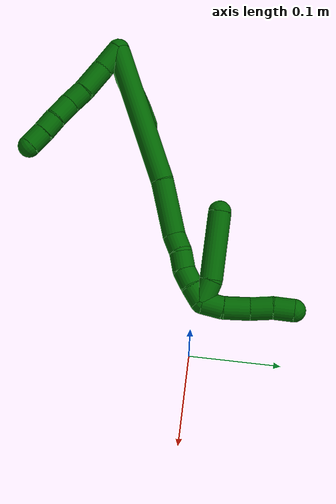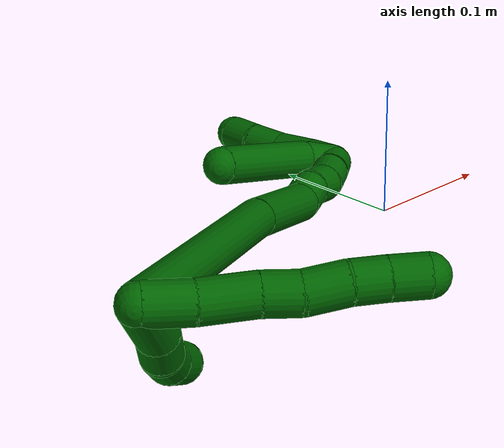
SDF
<sdf version="1.7">
 <world name="default">
  <model name="6">
   <static>0</static>
   <link name="6">
    <collision name="collision-cylinder-e_1_2_8">
     <pose>0.00754 -0.011135 -0.003984 1.91443 0.567581 0.785268</pose>
     <geometry><cylinder><radius>0.0125</radius><length>0.02805</length></cylinder></geometry>
     <surface>
      <friction><ode><mu>1.16</mu><mu2>1.16</mu2><slip1>0</slip1><slip2>0</slip2></ode></friction>
      <contact><ode><kp>1e+06</kp><kd>1</kd><max_vel>0</max_vel><min_depth>0.001</min_depth></ode></contact>
     </surface>
    </collision>
    <visual name="visual-cylinder-e_1_2_8">
     <pose>0.00754 -0.011135 -0.003984 1.91443 0.567581 0.785268</pose>
     <geometry><cylinder><radius>0.0125</radius><length>0.02805</length></cylinder></geometry>
     <material><ambient>0 0.392157 0.003922 1</ambient></material>
    </visual>
    <collision name="collision-cylinder-e_2_8_9">
     <pose>0.025208 -0.034521 -0.012737 1.94199 0.656431 0.924044</pose>
     <geometry><cylinder><radius>0.0125</radius><length>0.033193</length></cylinder></geometry>
     <surface>
      <friction><ode><mu>1.16</mu><mu2>1.16</mu2><slip1>0</slip1><slip2>0</slip2></ode></friction>
      <contact><ode><kp>1e+06</kp><kd>1</kd><max_vel>0</max_vel><min_depth>0.001</min_depth></ode></contact>
     </surface>
    </collision>
    <visual name="visual-cylinder-e_2_8_9">
     <pose>0.025208 -0.034521 -0.012737 1.94199 0.656431 0.924044</pose>
     <geometry><cylinder><radius>0.0125</radius><length>0.033193</length></cylinder></geometry>
     <material><ambient>0 0.392157 0.003922 1</ambient></material>
    </visual>
    <collision name="collision-cylinder-e_3_9_10">
     <pose>0.041522 -0.055418 -0.019283 1.77343 0.611303 0.738427</pose>
     <geometry><cylinder><radius>0.0125</radius><length>0.021554</length></cylinder></geometry>
     <surface>
      <friction><ode><mu>1.16</mu><mu2>1.16</mu2><slip1>0</slip1><slip2>0</slip2></ode></friction>
      <contact><ode><kp>1e+06</kp><kd>1</kd><max_vel>0</max_vel><min_depth>0.001</min_depth></ode></contact>
     </surface>
    </collision>
    <visual name="visual-cylinder-e_3_9_10">
     <pose>0.041522 -0.055418 -0.019283 1.77343 0.611303 0.738427</pose>
     <geometry><cylinder><radius>0.0125</radius><length>0.021554</length></cylinder></geometry>
     <material><ambient>0 0.392157 0.003922 1</ambient></material>
    </visual>
    <collision name="collision-cylinder-e_4_10_11">
     <pose>0.056514 -0.072476 -0.024095 1.91716 0.777587 1.05618</pose>
     <geometry><cylinder><radius>0.0125</radius><length>0.025105</length></cylinder></geometry>
     <surface>
      <friction><ode><mu>1.16</mu><mu2>1.16</mu2><slip1>0</slip1><slip2>0</slip2></ode></friction>
      <contact><ode><kp>1e+06</kp><kd>1</kd><max_vel>0</max_vel><min_depth>0.001</min_depth></ode></contact>
     </surface>
    </collision>
    <visual name="visual-cylinder-e_4_10_11">
     <pose>0.056514 -0.072476 -0.024095 1.91716 0.777587 1.05618</pose>
     <geometry><cylinder><radius>0.0125</radius><length>0.025105</length></cylinder></geometry>
     <material><ambient>0 0.392157 0.003922 1</ambient></material>
    </visual>
    <collision name="collision-cylinder-e_5_11_12">
     <pose>0.071391 -0.088464 -0.029972 1.92951 0.643836 0.897053</pose>
     <geometry><cylinder><radius>0.0125</radius><length>0.020228</length></cylinder></geometry>
     <surface>
      <friction><ode><mu>1.16</mu><mu2>1.16</mu2><slip1>0</slip1><slip2>0</slip2></ode></friction>
      <contact><ode><kp>1e+06</kp><kd>1</kd><max_vel>0</max_vel><min_depth>0.001</min_depth></ode></contact>
     </surface>
    </collision>
    <visual name="visual-cylinder-e_5_11_12">
     <pose>0.071391 -0.088464 -0.029972 1.92951 0.643836 0.897053</pose>
     <geometry><cylinder><radius>0.0125</radius><length>0.020228</length></cylinder></geometry>
     <material><ambient>0 0.392157 0.003922 1</ambient></material>
    </visual>
    <collision name="collision-cylinder-e_6_12_6">
     <pose>0.084051 -0.104451 -0.035135 1.84026 0.64669 0.829352</pose>
     <geometry><cylinder><radius>0.0125</radius><length>0.02187</length></cylinder></geometry>
     <surface>
      <friction><ode><mu>1.16</mu><mu2>1.16</mu2><slip1>0</slip1><slip2>0</slip2></ode></friction>
      <contact><ode><kp>1e+06</kp><kd>1</kd><max_vel>0</max_vel><min_depth>0.001</min_depth></ode></contact>
     </surface>
    </collision>
    <visual name="visual-cylinder-e_6_12_6">
     <pose>0.084051 -0.104451 -0.035135 1.84026 0.64669 0.829352</pose>
     <geometry><cylinder><radius>0.0125</radius><length>0.02187</length></cylinder></geometry>
     <material><ambient>0 0.392157 0.003922 1</ambient></material>
    </visual>
    <collision name="collision-cylinder-e_1_2_13">
     <pose>-0.008842 -0.009528 -0.01312 2.51349 -0.499236 -1.33093</pose>
     <geometry><cylinder><radius>0.0125</radius><length>0.036938</length></cylinder></geometry>
     <surface>
      <friction><ode><mu>1.16</mu><mu2>1.16</mu2><slip1>0</slip1><slip2>0</slip2></ode></friction>
      <contact><ode><kp>1e+06</kp><kd>1</kd><max_vel>0</max_vel><min_depth>0.001</min_depth></ode></contact>
     </surface>
    </collision>
    <visual name="visual-cylinder-e_1_2_13">
     <pose>-0.008842 -0.009528 -0.01312 2.51349 -0.499236 -1.33093</pose>
     <geometry><cylinder><radius>0.0125</radius><length>0.036938</length></cylinder></geometry>
     <material><ambient>0 0.392157 0.003922 1</ambient></material>
    </visual>
    <collision name="collision-cylinder-e_2_13_14">
     <pose>-0.024388 -0.023856 -0.033337 2.5469 -0.663886 -1.68821</pose>
     <geometry><cylinder><radius>0.0125</radius><length>0.021758</length></cylinder></geometry>
     <surface>
      <friction><ode><mu>1.16</mu><mu2>1.16</mu2><slip1>0</slip1><slip2>0</slip2></ode></friction>
      <contact><ode><kp>1e+06</kp><kd>1</kd><max_vel>0</max_vel><min_depth>0.001</min_depth></ode></contact>
     </surface>
    </collision>
    <visual name="visual-cylinder-e_2_13_14">
     <pose>-0.024388 -0.023856 -0.033337 2.5469 -0.663886 -1.68821</pose>
     <geometry><cylinder><radius>0.0125</radius><length>0.021758</length></cylinder></geometry>
     <material><ambient>0 0.392157 0.003922 1</ambient></material>
    </visual>
    <collision name="collision-cylinder-e_3_14_15">
     <pose>-0.035171 -0.032409 -0.048874 2.72317 -0.415991 -1.56479</pose>
     <geometry><cylinder><radius>0.0125</radius><length>0.020194</length></cylinder></geometry>
     <surface>
      <friction><ode><mu>1.16</mu><mu2>1.16</mu2><slip1>0</slip1><slip2>0</slip2></ode></friction>
      <contact><ode><kp>1e+06</kp><kd>1</kd><max_vel>0</max_vel><min_depth>0.001</min_depth></ode></contact>
     </surface>
    </collision>
    <visual name="visual-cylinder-e_3_14_15">
     <pose>-0.035171 -0.032409 -0.048874 2.72317 -0.415991 -1.56479</pose>
     <geometry><cylinder><radius>0.0125</radius><length>0.020194</length></cylinder></geometry>
     <material><ambient>0 0.392157 0.003922 1</ambient></material>
    </visual>
    <collision name="collision-cylinder-e_4_15_5">
     <pose>-0.040991 -0.039957 -0.067007 2.7685 -0.165583 -0.828442</pose>
     <geometry><cylinder><radius>0.0125</radius><length>0.021111</length></cylinder></geometry>
     <surface>
      <friction><ode><mu>1.16</mu><mu2>1.16</mu2><slip1>0</slip1><slip2>0</slip2></ode></friction>
      <contact><ode><kp>1e+06</kp><kd>1</kd><max_vel>0</max_vel><min_depth>0.001</min_depth></ode></contact>
     </surface>
    </collision>
    <visual name="visual-cylinder-e_4_15_5">
     <pose>-0.040991 -0.039957 -0.067007 2.7685 -0.165583 -0.828442</pose>
     <geometry><cylinder><radius>0.0125</radius><length>0.021111</length></cylinder></geometry>
     <material><ambient>0 0.392157 0.003922 1</ambient></material>
    </visual>
    <collision name="collision-cylinder-e_1_2_16">
     <pose>0.015793 -0.017386 -0.074825 2.91329 0.202763 1.45152</pose>
     <geometry><cylinder><radius>0.0125</radius><length>0.156851</length></cylinder></geometry>
     <surface>
      <friction><ode><mu>1.16</mu><mu2>1.16</mu2><slip1>0</slip1><slip2>0</slip2></ode></friction>
      <contact><ode><kp>1e+06</kp><kd>1</kd><max_vel>0</max_vel><min_depth>0.001</min_depth></ode></contact>
     </surface>
    </collision>
    <visual name="visual-cylinder-e_1_2_16">
     <pose>0.015793 -0.017386 -0.074825 2.91329 0.202763 1.45152</pose>
     <geometry><cylinder><radius>0.0125</radius><length>0.156851</length></cylinder></geometry>
     <material><ambient>0 0.392157 0.003922 1</ambient></material>
    </visual>
    <collision name="collision-cylinder-e_2_16_17">
     <pose>0.037097 -0.04567 -0.178367 2.77887 0.177541 0.903751</pose>
     <geometry><cylinder><radius>0.0125</radius><length>0.06241</length></cylinder></geometry>
     <surface>
      <friction><ode><mu>1.16</mu><mu2>1.16</mu2><slip1>0</slip1><slip2>0</slip2></ode></friction>
      <contact><ode><kp>1e+06</kp><kd>1</kd><max_vel>0</max_vel><min_depth>0.001</min_depth></ode></contact>
     </surface>
    </collision>
    <visual name="visual-cylinder-e_2_16_17">
     <pose>0.037097 -0.04567 -0.178367 2.77887 0.177541 0.903751</pose>
     <geometry><cylinder><radius>0.0125</radius><length>0.06241</length></cylinder></geometry>
     <material><ambient>0 0.392157 0.003922 1</ambient></material>
    </visual>
    <collision name="collision-cylinder-e_3_17_18">
     <pose>0.046258 -0.057248 -0.216458 3.06919 0.370399 2.75964</pose>
     <geometry><cylinder><radius>0.0125</radius><length>0.020166</length></cylinder></geometry>
     <surface>
      <friction><ode><mu>1.16</mu><mu2>1.16</mu2><slip1>0</slip1><slip2>0</slip2></ode></friction>
      <contact><ode><kp>1e+06</kp><kd>1</kd><max_vel>0</max_vel><min_depth>0.001</min_depth></ode></contact>
     </surface>
    </collision>
    <visual name="visual-cylinder-e_3_17_18">
     <pose>0.046258 -0.057248 -0.216458 3.06919 0.370399 2.75964</pose>
     <geometry><cylinder><radius>0.0125</radius><length>0.020166</length></cylinder></geometry>
     <material><ambient>0 0.392157 0.003922 1</ambient></material>
    </visual>
    <collision name="collision-cylinder-e_4_18_19">
     <pose>0.052145 -0.061636 -0.235111 2.76144 0.220265 1.04328</pose>
     <geometry><cylinder><radius>0.0125</radius><length>0.02048</length></cylinder></geometry>
     <surface>
      <friction><ode><mu>1.16</mu><mu2>1.16</mu2><slip1>0</slip1><slip2>0</slip2></ode></friction>
      <contact><ode><kp>1e+06</kp><kd>1</kd><max_vel>0</max_vel><min_depth>0.001</min_depth></ode></contact>
     </surface>
    </collision>
    <visual name="visual-cylinder-e_4_18_19">
     <pose>0.052145 -0.061636 -0.235111 2.76144 0.220265 1.04328</pose>
     <geometry><cylinder><radius>0.0125</radius><length>0.02048</length></cylinder></geometry>
     <material><ambient>0 0.392157 0.003922 1</ambient></material>
    </visual>
    <collision name="collision-cylinder-e_5_19_20">
     <pose>0.056932 -0.065663 -0.254093 3.10874 0.256821 2.88853</pose>
     <geometry><cylinder><radius>0.0125</radius><length>0.020074</length></cylinder></geometry>
     <surface>
      <friction><ode><mu>1.16</mu><mu2>1.16</mu2><slip1>0</slip1><slip2>0</slip2></ode></friction>
      <contact><ode><kp>1e+06</kp><kd>1</kd><max_vel>0</max_vel><min_depth>0.001</min_depth></ode></contact>
     </surface>
    </collision>
    <visual name="visual-cylinder-e_5_19_20">
     <pose>0.056932 -0.065663 -0.254093 3.10874 0.256821 2.88853</pose>
     <geometry><cylinder><radius>0.0125</radius><length>0.020074</length></cylinder></geometry>
     <material><ambient>0 0.392157 0.003922 1</ambient></material>
    </visual>
    <collision name="collision-cylinder-e_6_20_1">
     <pose>0.060631 -0.066307 -0.273734 3.10888 0.115085 2.5882</pose>
     <geometry><cylinder><radius>0.0125</radius><length>0.020019</length></cylinder></geometry>
     <surface>
      <friction><ode><mu>1.16</mu><mu2>1.16</mu2><slip1>0</slip1><slip2>0</slip2></ode></friction>
      <contact><ode><kp>1e+06</kp><kd>1</kd><max_vel>0</max_vel><min_depth>0.001</min_depth></ode></contact>
     </surface>
    </collision>
    <visual name="visual-cylinder-e_6_20_1">
     <pose>0.060631 -0.066307 -0.273734 3.10888 0.115085 2.5882</pose>
     <geometry><cylinder><radius>0.0125</radius><length>0.020019</length></cylinder></geometry>
     <material><ambient>0 0.392157 0.003922 1</ambient></material>
    </visual>
    <collision name="collision-cylinder-e_1_1_21">
     <pose>0.057358 -0.060474 -0.292483 -2.5316 -0.39033 1.12139</pose>
     <geometry><cylinder><radius>0.0125</radius><length>0.023249</length></cylinder></geometry>
     <surface>
      <friction><ode><mu>1.16</mu><mu2>1.16</mu2><slip1>0</slip1><slip2>0</slip2></ode></friction>
      <contact><ode><kp>1e+06</kp><kd>1</kd><max_vel>0</max_vel><min_depth>0.001</min_depth></ode></contact>
     </surface>
    </collision>
    <visual name="visual-cylinder-e_1_1_21">
     <pose>0.057358 -0.060474 -0.292483 -2.5316 -0.39033 1.12139</pose>
     <geometry><cylinder><radius>0.0125</radius><length>0.023249</length></cylinder></geometry>
     <material><ambient>0 0.392157 0.003922 1</ambient></material>
    </visual>
    <collision name="collision-cylinder-e_2_21_22">
     <pose>0.046378 -0.044742 -0.310058 -2.31205 -0.467763 0.991919</pose>
     <geometry><cylinder><radius>0.0125</radius><length>0.029082</length></cylinder></geometry>
     <surface>
      <friction><ode><mu>1.16</mu><mu2>1.16</mu2><slip1>0</slip1><slip2>0</slip2></ode></friction>
      <contact><ode><kp>1e+06</kp><kd>1</kd><max_vel>0</max_vel><min_depth>0.001</min_depth></ode></contact>
     </surface>
    </collision>
    <visual name="visual-cylinder-e_2_21_22">
     <pose>0.046378 -0.044742 -0.310058 -2.31205 -0.467763 0.991919</pose>
     <geometry><cylinder><radius>0.0125</radius><length>0.029082</length></cylinder></geometry>
     <material><ambient>0 0.392157 0.003922 1</ambient></material>
    </visual>
    <collision name="collision-cylinder-e_3_22_23">
     <pose>0.035182 -0.025699 -0.325632 -2.19426 -0.378612 0.71542</pose>
     <geometry><cylinder><radius>0.0125</radius><length>0.025105</length></cylinder></geometry>
     <surface>
      <friction><ode><mu>1.16</mu><mu2>1.16</mu2><slip1>0</slip1><slip2>0</slip2></ode></friction>
      <contact><ode><kp>1e+06</kp><kd>1</kd><max_vel>0</max_vel><min_depth>0.001</min_depth></ode></contact>
     </surface>
    </collision>
    <visual name="visual-cylinder-e_3_22_23">
     <pose>0.035182 -0.025699 -0.325632 -2.19426 -0.378612 0.71542</pose>
     <geometry><cylinder><radius>0.0125</radius><length>0.025105</length></cylinder></geometry>
     <material><ambient>0 0.392157 0.003922 1</ambient></material>
    </visual>
    <collision name="collision-cylinder-e_4_23_4">
     <pose>0.02669 -0.00887 -0.340076 -2.37456 -0.348469 0.822698</pose>
     <geometry><cylinder><radius>0.0125</radius><length>0.022564</length></cylinder></geometry>
     <surface>
      <friction><ode><mu>1.16</mu><mu2>1.16</mu2><slip1>0</slip1><slip2>0</slip2></ode></friction>
      <contact><ode><kp>1e+06</kp><kd>1</kd><max_vel>0</max_vel><min_depth>0.001</min_depth></ode></contact>
     </surface>
    </collision>
    <visual name="visual-cylinder-e_4_23_4">
     <pose>0.02669 -0.00887 -0.340076 -2.37456 -0.348469 0.822698</pose>
     <geometry><cylinder><radius>0.0125</radius><length>0.022564</length></cylinder></geometry>
     <material><ambient>0 0.392157 0.003922 1</ambient></material>
    </visual>
    <collision name="collision-cylinder-e_1_1_24">
     <pose>0.057683 -0.056659 -0.277155 -0.992004 -0.331293 0.180437</pose>
     <geometry><cylinder><radius>0.0125</radius><length>0.025196</length></cylinder></geometry>
     <surface>
      <friction><ode><mu>1.16</mu><mu2>1.16</mu2><slip1>0</slip1><slip2>0</slip2></ode></friction>
      <contact><ode><kp>1e+06</kp><kd>1</kd><max_vel>0</max_vel><min_depth>0.001</min_depth></ode></contact>
     </surface>
    </collision>
    <visual name="visual-cylinder-e_1_1_24">
     <pose>0.057683 -0.056659 -0.277155 -0.992004 -0.331293 0.180437</pose>
     <geometry><cylinder><radius>0.0125</radius><length>0.025196</length></cylinder></geometry>
     <material><ambient>0 0.392157 0.003922 1</ambient></material>
    </visual>
    <collision name="collision-cylinder-e_2_24_3">
     <pose>0.041451 -0.024493 -0.243087 -0.678111 -0.330398 0.117459</pose>
     <geometry><cylinder><radius>0.0125</radius><length>0.074804</length></cylinder></geometry>
     <surface>
      <friction><ode><mu>1.16</mu><mu2>1.16</mu2><slip1>0</slip1><slip2>0</slip2></ode></friction>
      <contact><ode><kp>1e+06</kp><kd>1</kd><max_vel>0</max_vel><min_depth>0.001</min_depth></ode></contact>
     </surface>
    </collision>
    <visual name="visual-cylinder-e_2_24_3">
     <pose>0.041451 -0.024493 -0.243087 -0.678111 -0.330398 0.117459</pose>
     <geometry><cylinder><radius>0.0125</radius><length>0.074804</length></cylinder></geometry>
     <material><ambient>0 0.392157 0.003922 1</ambient></material>
    </visual>
    <collision name="collision-sphere-3">
     <pose>0.029317 -0.002299 -0.215535 0 -0 0</pose>
     <geometry><sphere><radius>0.0125</radius></sphere></geometry>
     <surface>
      <friction><ode><mu>1.16</mu><mu2>1.16</mu2><slip1>0</slip1><slip2>0</slip2></ode></friction>
      <contact><ode><kp>1e+06</kp><kd>1</kd><max_vel>0</max_vel><min_depth>0.001</min_depth></ode></contact>
     </surface>
    </collision>
    <visual name="visual-sphere-3">
     <pose>0.029317 -0.002299 -0.215535 0 -0 0</pose>
     <geometry><sphere><radius>0.0125</radius></sphere></geometry>
     <material><ambient>0 0.392157 0.003922 1</ambient></material>
    </visual>
    <collision name="collision-sphere-24">
     <pose>0.053585 -0.046687 -0.270639 0 -0 0</pose>
     <geometry><sphere><radius>0.0125</radius></sphere></geometry>
     <surface>
      <friction><ode><mu>1.16</mu><mu2>1.16</mu2><slip1>0</slip1><slip2>0</slip2></ode></friction>
      <contact><ode><kp>1e+06</kp><kd>1</kd><max_vel>0</max_vel><min_depth>0.001</min_depth></ode></contact>
     </surface>
    </collision>
    <visual name="visual-sphere-24">
     <pose>0.053585 -0.046687 -0.270639 0 -0 0</pose>
     <geometry><sphere><radius>0.0125</radius></sphere></geometry>
     <material><ambient>0 0.392157 0.003922 1</ambient></material>
    </visual>
    <collision name="collision-sphere-4">
     <pose>0.022837 -0.001511 -0.34771 0 -0 0</pose>
     <geometry><sphere><radius>0.0125</radius></sphere></geometry>
     <surface>
      <friction><ode><mu>1.16</mu><mu2>1.16</mu2><slip1>0</slip1><slip2>0</slip2></ode></friction>
      <contact><ode><kp>1e+06</kp><kd>1</kd><max_vel>0</max_vel><min_depth>0.001</min_depth></ode></contact>
     </surface>
    </collision>
    <visual name="visual-sphere-4">
     <pose>0.022837 -0.001511 -0.34771 0 -0 0</pose>
     <geometry><sphere><radius>0.0125</radius></sphere></geometry>
     <material><ambient>0 0.392157 0.003922 1</ambient></material>
    </visual>
    <collision name="collision-sphere-23">
     <pose>0.030542 -0.016229 -0.332441 0 -0 0</pose>
     <geometry><sphere><radius>0.0125</radius></sphere></geometry>
     <surface>
      <friction><ode><mu>1.16</mu><mu2>1.16</mu2><slip1>0</slip1><slip2>0</slip2></ode></friction>
      <contact><ode><kp>1e+06</kp><kd>1</kd><max_vel>0</max_vel><min_depth>0.001</min_depth></ode></contact>
     </surface>
    </collision>
    <visual name="visual-sphere-23">
     <pose>0.030542 -0.016229 -0.332441 0 -0 0</pose>
     <geometry><sphere><radius>0.0125</radius></sphere></geometry>
     <material><ambient>0 0.392157 0.003922 1</ambient></material>
    </visual>
    <collision name="collision-sphere-22">
     <pose>0.039822 -0.035168 -0.318822 0 -0 0</pose>
     <geometry><sphere><radius>0.0125</radius></sphere></geometry>
     <surface>
      <friction><ode><mu>1.16</mu><mu2>1.16</mu2><slip1>0</slip1><slip2>0</slip2></ode></friction>
      <contact><ode><kp>1e+06</kp><kd>1</kd><max_vel>0</max_vel><min_depth>0.001</min_depth></ode></contact>
     </surface>
    </collision>
    <visual name="visual-sphere-22">
     <pose>0.039822 -0.035168 -0.318822 0 -0 0</pose>
     <geometry><sphere><radius>0.0125</radius></sphere></geometry>
     <material><ambient>0 0.392157 0.003922 1</ambient></material>
    </visual>
    <collision name="collision-sphere-21">
     <pose>0.052935 -0.054316 -0.301294 0 -0 0</pose>
     <geometry><sphere><radius>0.0125</radius></sphere></geometry>
     <surface>
      <friction><ode><mu>1.16</mu><mu2>1.16</mu2><slip1>0</slip1><slip2>0</slip2></ode></friction>
      <contact><ode><kp>1e+06</kp><kd>1</kd><max_vel>0</max_vel><min_depth>0.001</min_depth></ode></contact>
     </surface>
    </collision>
    <visual name="visual-sphere-21">
     <pose>0.052935 -0.054316 -0.301294 0 -0 0</pose>
     <geometry><sphere><radius>0.0125</radius></sphere></geometry>
     <material><ambient>0 0.392157 0.003922 1</ambient></material>
    </visual>
    <collision name="collision-sphere-1">
     <pose>0.061781 -0.066632 -0.283672 0 -0 0</pose>
     <geometry><sphere><radius>0.0125</radius></sphere></geometry>
     <surface>
      <friction><ode><mu>1.16</mu><mu2>1.16</mu2><slip1>0</slip1><slip2>0</slip2></ode></friction>
      <contact><ode><kp>1e+06</kp><kd>1</kd><max_vel>0</max_vel><min_depth>0.001</min_depth></ode></contact>
     </surface>
    </collision>
    <visual name="visual-sphere-1">
     <pose>0.061781 -0.066632 -0.283672 0 -0 0</pose>
     <geometry><sphere><radius>0.0125</radius></sphere></geometry>
     <material><ambient>0 0.392157 0.003922 1</ambient></material>
    </visual>
    <collision name="collision-sphere-12">
     <pose>0.077462 -0.096039 -0.032812 0 -0 0</pose>
     <geometry><sphere><radius>0.0125</radius></sphere></geometry>
     <surface>
      <friction><ode><mu>1.16</mu><mu2>1.16</mu2><slip1>0</slip1><slip2>0</slip2></ode></friction>
      <contact><ode><kp>1e+06</kp><kd>1</kd><max_vel>0</max_vel><min_depth>0.001</min_depth></ode></contact>
     </surface>
    </collision>
    <visual name="visual-sphere-12">
     <pose>0.077462 -0.096039 -0.032812 0 -0 0</pose>
     <geometry><sphere><radius>0.0125</radius></sphere></geometry>
     <material><ambient>0 0.392157 0.003922 1</ambient></material>
    </visual>
    <collision name="collision-sphere-11">
     <pose>0.06532 -0.08089 -0.027132 0 -0 0</pose>
     <geometry><sphere><radius>0.0125</radius></sphere></geometry>
     <surface>
      <friction><ode><mu>1.16</mu><mu2>1.16</mu2><slip1>0</slip1><slip2>0</slip2></ode></friction>
      <contact><ode><kp>1e+06</kp><kd>1</kd><max_vel>0</max_vel><min_depth>0.001</min_depth></ode></contact>
     </surface>
    </collision>
    <visual name="visual-sphere-11">
     <pose>0.06532 -0.08089 -0.027132 0 -0 0</pose>
     <geometry><sphere><radius>0.0125</radius></sphere></geometry>
     <material><ambient>0 0.392157 0.003922 1</ambient></material>
    </visual>
    <collision name="collision-sphere-10">
     <pose>0.047708 -0.064063 -0.021059 0 -0 0</pose>
     <geometry><sphere><radius>0.0125</radius></sphere></geometry>
     <surface>
      <friction><ode><mu>1.16</mu><mu2>1.16</mu2><slip1>0</slip1><slip2>0</slip2></ode></friction>
      <contact><ode><kp>1e+06</kp><kd>1</kd><max_vel>0</max_vel><min_depth>0.001</min_depth></ode></contact>
     </surface>
    </collision>
    <visual name="visual-sphere-10">
     <pose>0.047708 -0.064063 -0.021059 0 -0 0</pose>
     <geometry><sphere><radius>0.0125</radius></sphere></geometry>
     <material><ambient>0 0.392157 0.003922 1</ambient></material>
    </visual>
    <collision name="collision-sphere-9">
     <pose>0.035337 -0.046773 -0.017506 0 -0 0</pose>
     <geometry><sphere><radius>0.0125</radius></sphere></geometry>
     <surface>
      <friction><ode><mu>1.16</mu><mu2>1.16</mu2><slip1>0</slip1><slip2>0</slip2></ode></friction>
      <contact><ode><kp>1e+06</kp><kd>1</kd><max_vel>0</max_vel><min_depth>0.001</min_depth></ode></contact>
     </surface>
    </collision>
    <visual name="visual-sphere-9">
     <pose>0.035337 -0.046773 -0.017506 0 -0 0</pose>
     <geometry><sphere><radius>0.0125</radius></sphere></geometry>
     <material><ambient>0 0.392157 0.003922 1</ambient></material>
    </visual>
    <collision name="collision-sphere-2">
     <geometry><sphere><radius>0.0125</radius></sphere></geometry>
     <surface>
      <friction><ode><mu>1.16</mu><mu2>1.16</mu2><slip1>0</slip1><slip2>0</slip2></ode></friction>
      <contact><ode><kp>1e+06</kp><kd>1</kd><max_vel>0</max_vel><min_depth>0.001</min_depth></ode></contact>
     </surface>
    </collision>
    <visual name="visual-sphere-2">
     <geometry><sphere><radius>0.0125</radius></sphere></geometry>
     <material><ambient>0 0.392157 0.003922 1</ambient></material>
    </visual>
    <collision name="collision-sphere-19">
     <pose>0.054383 -0.065344 -0.24439 0 -0 0</pose>
     <geometry><sphere><radius>0.0125</radius></sphere></geometry>
     <surface>
      <friction><ode><mu>1.16</mu><mu2>1.16</mu2><slip1>0</slip1><slip2>0</slip2></ode></friction>
      <contact><ode><kp>1e+06</kp><kd>1</kd><max_vel>0</max_vel><min_depth>0.001</min_depth></ode></contact>
     </surface>
    </collision>
    <visual name="visual-sphere-19">
     <pose>0.054383 -0.065344 -0.24439 0 -0 0</pose>
     <geometry><sphere><radius>0.0125</radius></sphere></geometry>
     <material><ambient>0 0.392157 0.003922 1</ambient></material>
    </visual>
    <collision name="collision-sphere-8">
     <pose>0.015079 -0.022269 -0.007968 0 -0 0</pose>
     <geometry><sphere><radius>0.0125</radius></sphere></geometry>
     <surface>
      <friction><ode><mu>1.16</mu><mu2>1.16</mu2><slip1>0</slip1><slip2>0</slip2></ode></friction>
      <contact><ode><kp>1e+06</kp><kd>1</kd><max_vel>0</max_vel><min_depth>0.001</min_depth></ode></contact>
     </surface>
    </collision>
    <visual name="visual-sphere-8">
     <pose>0.015079 -0.022269 -0.007968 0 -0 0</pose>
     <geometry><sphere><radius>0.0125</radius></sphere></geometry>
     <material><ambient>0 0.392157 0.003922 1</ambient></material>
    </visual>
    <collision name="collision-sphere-6">
     <pose>0.09064 -0.112863 -0.037458 0 -0 0</pose>
     <geometry><sphere><radius>0.0125</radius></sphere></geometry>
     <surface>
      <friction><ode><mu>1.16</mu><mu2>1.16</mu2><slip1>0</slip1><slip2>0</slip2></ode></friction>
      <contact><ode><kp>1e+06</kp><kd>1</kd><max_vel>0</max_vel><min_depth>0.001</min_depth></ode></contact>
     </surface>
    </collision>
    <visual name="visual-sphere-6">
     <pose>0.09064 -0.112863 -0.037458 0 -0 0</pose>
     <geometry><sphere><radius>0.0125</radius></sphere></geometry>
     <material><ambient>0 0.392157 0.003922 1</ambient></material>
    </visual>
    <collision name="collision-sphere-13">
     <pose>-0.017684 -0.019056 -0.02624 0 -0 0</pose>
     <geometry><sphere><radius>0.0125</radius></sphere></geometry>
     <surface>
      <friction><ode><mu>1.16</mu><mu2>1.16</mu2><slip1>0</slip1><slip2>0</slip2></ode></friction>
      <contact><ode><kp>1e+06</kp><kd>1</kd><max_vel>0</max_vel><min_depth>0.001</min_depth></ode></contact>
     </surface>
    </collision>
    <visual name="visual-sphere-13">
     <pose>-0.017684 -0.019056 -0.02624 0 -0 0</pose>
     <geometry><sphere><radius>0.0125</radius></sphere></geometry>
     <material><ambient>0 0.392157 0.003922 1</ambient></material>
    </visual>
    <collision name="collision-sphere-14">
     <pose>-0.031091 -0.028657 -0.040435 0 -0 0</pose>
     <geometry><sphere><radius>0.0125</radius></sphere></geometry>
     <surface>
      <friction><ode><mu>1.16</mu><mu2>1.16</mu2><slip1>0</slip1><slip2>0</slip2></ode></friction>
      <contact><ode><kp>1e+06</kp><kd>1</kd><max_vel>0</max_vel><min_depth>0.001</min_depth></ode></contact>
     </surface>
    </collision>
    <visual name="visual-sphere-14">
     <pose>-0.031091 -0.028657 -0.040435 0 -0 0</pose>
     <geometry><sphere><radius>0.0125</radius></sphere></geometry>
     <material><ambient>0 0.392157 0.003922 1</ambient></material>
    </visual>
    <collision name="collision-sphere-15">
     <pose>-0.039251 -0.036162 -0.057313 0 -0 0</pose>
     <geometry><sphere><radius>0.0125</radius></sphere></geometry>
     <surface>
      <friction><ode><mu>1.16</mu><mu2>1.16</mu2><slip1>0</slip1><slip2>0</slip2></ode></friction>
      <contact><ode><kp>1e+06</kp><kd>1</kd><max_vel>0</max_vel><min_depth>0.001</min_depth></ode></contact>
     </surface>
    </collision>
    <visual name="visual-sphere-15">
     <pose>-0.039251 -0.036162 -0.057313 0 -0 0</pose>
     <geometry><sphere><radius>0.0125</radius></sphere></geometry>
     <material><ambient>0 0.392157 0.003922 1</ambient></material>
    </visual>
    <collision name="collision-sphere-5">
     <pose>-0.042731 -0.043751 -0.076702 0 -0 0</pose>
     <geometry><sphere><radius>0.0125</radius></sphere></geometry>
     <surface>
      <friction><ode><mu>1.16</mu><mu2>1.16</mu2><slip1>0</slip1><slip2>0</slip2></ode></friction>
      <contact><ode><kp>1e+06</kp><kd>1</kd><max_vel>0</max_vel><min_depth>0.001</min_depth></ode></contact>
     </surface>
    </collision>
    <visual name="visual-sphere-5">
     <pose>-0.042731 -0.043751 -0.076702 0 -0 0</pose>
     <geometry><sphere><radius>0.0125</radius></sphere></geometry>
     <material><ambient>0 0.392157 0.003922 1</ambient></material>
    </visual>
    <collision name="collision-sphere-16">
     <pose>0.031586 -0.034772 -0.149651 0 -0 0</pose>
     <geometry><sphere><radius>0.0125</radius></sphere></geometry>
     <surface>
      <friction><ode><mu>1.16</mu><mu2>1.16</mu2><slip1>0</slip1><slip2>0</slip2></ode></friction>
      <contact><ode><kp>1e+06</kp><kd>1</kd><max_vel>0</max_vel><min_depth>0.001</min_depth></ode></contact>
     </surface>
    </collision>
    <visual name="visual-sphere-16">
     <pose>0.031586 -0.034772 -0.149651 0 -0 0</pose>
     <geometry><sphere><radius>0.0125</radius></sphere></geometry>
     <material><ambient>0 0.392157 0.003922 1</ambient></material>
    </visual>
    <collision name="collision-sphere-17">
     <pose>0.042608 -0.056568 -0.207083 0 -0 0</pose>
     <geometry><sphere><radius>0.0125</radius></sphere></geometry>
     <surface>
      <friction><ode><mu>1.16</mu><mu2>1.16</mu2><slip1>0</slip1><slip2>0</slip2></ode></friction>
      <contact><ode><kp>1e+06</kp><kd>1</kd><max_vel>0</max_vel><min_depth>0.001</min_depth></ode></contact>
     </surface>
    </collision>
    <visual name="visual-sphere-17">
     <pose>0.042608 -0.056568 -0.207083 0 -0 0</pose>
     <geometry><sphere><radius>0.0125</radius></sphere></geometry>
     <material><ambient>0 0.392157 0.003922 1</ambient></material>
    </visual>
    <collision name="collision-sphere-18">
     <pose>0.049908 -0.057928 -0.225832 0 -0 0</pose>
     <geometry><sphere><radius>0.0125</radius></sphere></geometry>
     <surface>
      <friction><ode><mu>1.16</mu><mu2>1.16</mu2><slip1>0</slip1><slip2>0</slip2></ode></friction>
      <contact><ode><kp>1e+06</kp><kd>1</kd><max_vel>0</max_vel><min_depth>0.001</min_depth></ode></contact>
     </surface>
    </collision>
    <visual name="visual-sphere-18">
     <pose>0.049908 -0.057928 -0.225832 0 -0 0</pose>
     <geometry><sphere><radius>0.0125</radius></sphere></geometry>
     <material><ambient>0 0.392157 0.003922 1</ambient></material>
    </visual>
    <collision name="collision-sphere-20">
     <pose>0.059482 -0.065982 -0.263796 0 -0 0</pose>
     <geometry><sphere><radius>0.0125</radius></sphere></geometry>
     <surface>
      <friction><ode><mu>1.16</mu><mu2>1.16</mu2><slip1>0</slip1><slip2>0</slip2></ode></friction>
      <contact><ode><kp>1e+06</kp><kd>1</kd><max_vel>0</max_vel><min_depth>0.001</min_depth></ode></contact>
     </surface>
    </collision>
    <visual name="visual-sphere-20">
     <pose>0.059482 -0.065982 -0.263796 0 -0 0</pose>
     <geometry><sphere><radius>0.0125</radius></sphere></geometry>
     <material><ambient>0 0.392157 0.003922 1</ambient></material>
    </visual>
    <inertial>
     <pose>0.029444 -0.037822 -0.141337 0 -0 0</pose>
     <mass>0.75</mass>
     <inertia>
      <ixx>0.000455</ixx>
      <ixy>0</ixy>
      <ixz>0</ixz>
      <iyy>0.000345</iyy>
      <iyz>0</iyz>
      <izz>-2.3e-05</izz>
     </inertia>
    </inertial>
   </link>
   <pose>-0.315792 -0.116014 0.083044 1.31118 -0.919622 -0.621022</pose>
  </model>
 </world>
</sdf>
